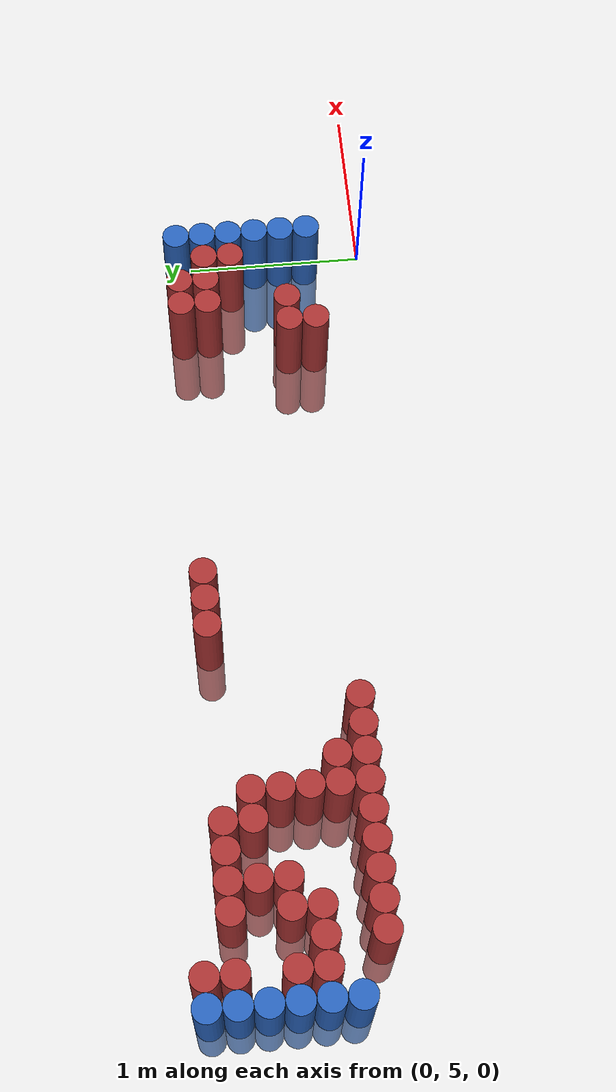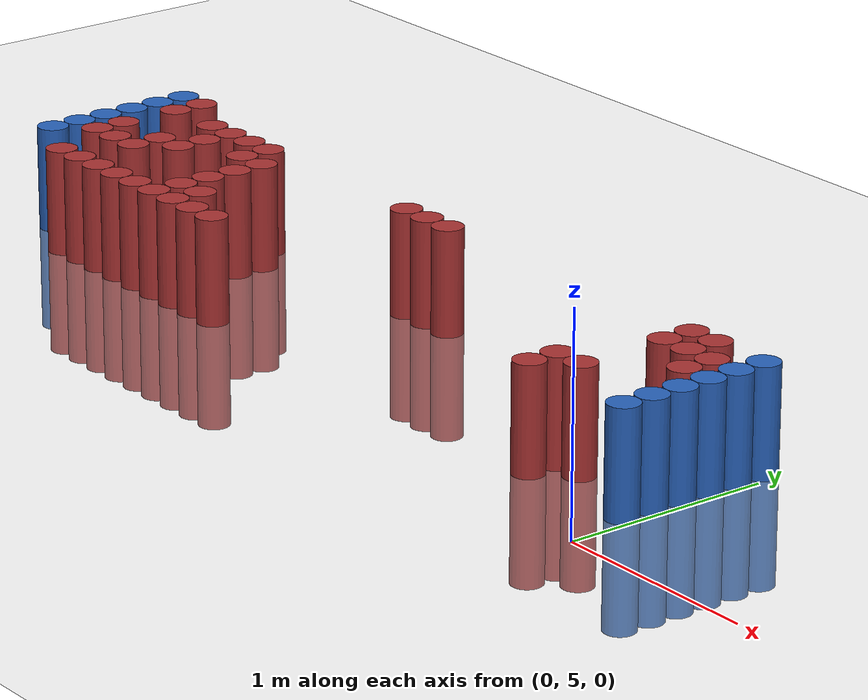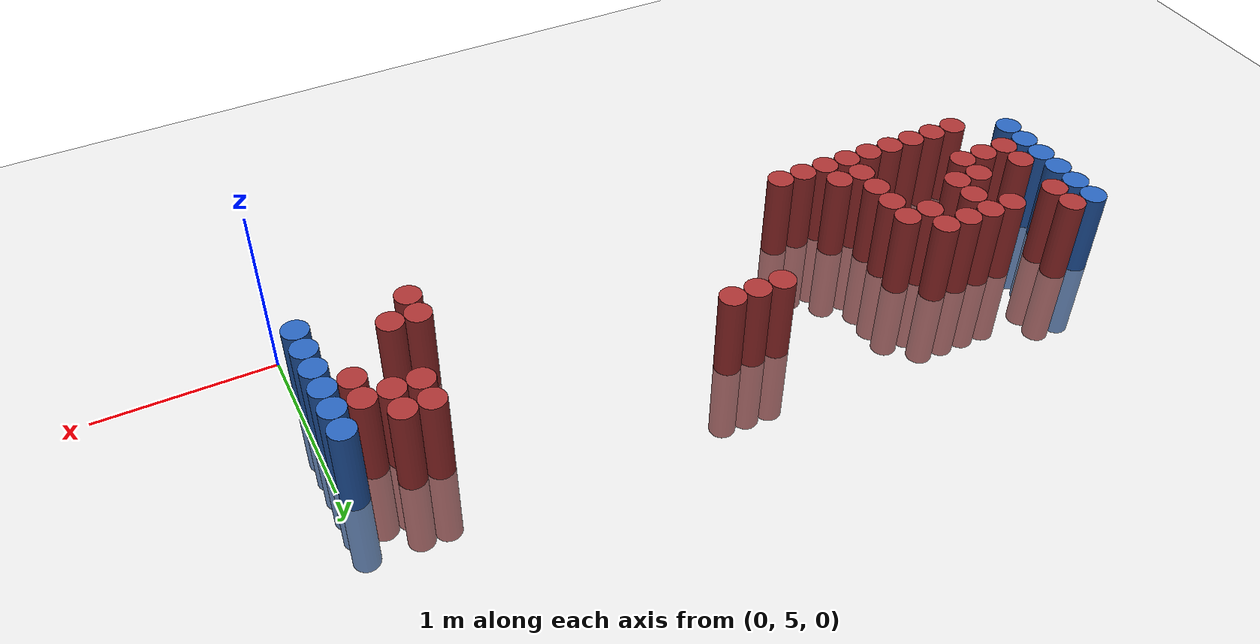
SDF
<sdf version="1.6">
 <world name="default">
  <model name="ground_plane">
   <static>1</static>
   <link name="link">
    <collision name="collision">
     <geometry><plane><normal>0 0 1</normal><size>100 100</size></plane></geometry>
     <surface><friction><ode><mu>100</mu><mu2>50</mu2></ode></friction></surface>
    </collision>
    <visual name="visual">
     <cast_shadows>0</cast_shadows>
     <geometry><plane><normal>0 0 1</normal><size>100 100</size></plane></geometry>
     <material>
      <script><uri>file://media/materials/scripts/gazebo.material</uri><name>Gazebo/Grey</name></script>
     </material>
    </visual>
   </link>
  </model>
  <model name="unit_cylinder_98">
   <static>1</static>
   <pose>-4.425000 5.475000 0.000000 0.000000 0.000000 0.000000</pose>
   <link name="link">
    <inertial>
     <mass>1</mass>
     <inertia><ixx>0.145833</ixx><ixy>0</ixy><ixz>0</ixz><iyy>0.145833</iyy><iyz>0</iyz><izz>0.125</izz></inertia>
    </inertial>
    <collision name="collision">
     <geometry><cylinder><radius>0.075000</radius><length>1</length></cylinder></geometry>
    </collision>
    <visual name="visual">
     <geometry><cylinder><radius>0.075000</radius><length>1</length></cylinder></geometry>
     <material>
      <ambient>0.152000 0.379000 0.720000 1</ambient>
      <diffuse>0.152000 0.379000 0.720000 1</diffuse>
     </material>
     <material>
      <script><name>Gazebo/Grey</name><uri>file://media/materials/scripts/gazebo.material</uri></script>
     </material>
    </visual>
   </link>
  </model>
  <model name="unit_cylinder_99">
   <static>1</static>
   <pose>-4.425000 5.625000 0.000000 0.000000 0.000000 0.000000</pose>
   <link name="link">
    <inertial>
     <mass>1</mass>
     <inertia><ixx>0.145833</ixx><ixy>0</ixy><ixz>0</ixz><iyy>0.145833</iyy><iyz>0</iyz><izz>0.125</izz></inertia>
    </inertial>
    <collision name="collision">
     <geometry><cylinder><radius>0.075000</radius><length>1</length></cylinder></geometry>
    </collision>
    <visual name="visual">
     <geometry><cylinder><radius>0.075000</radius><length>1</length></cylinder></geometry>
     <material>
      <ambient>0.152000 0.379000 0.720000 1</ambient>
      <diffuse>0.152000 0.379000 0.720000 1</diffuse>
     </material>
     <material>
      <script><name>Gazebo/Grey</name><uri>file://media/materials/scripts/gazebo.material</uri></script>
     </material>
    </visual>
   </link>
  </model>
  <model name="unit_cylinder_100">
   <static>1</static>
   <pose>-4.425000 5.775000 0.000000 0.000000 0.000000 0.000000</pose>
   <link name="link">
    <inertial>
     <mass>1</mass>
     <inertia><ixx>0.145833</ixx><ixy>0</ixy><ixz>0</ixz><iyy>0.145833</iyy><iyz>0</iyz><izz>0.125</izz></inertia>
    </inertial>
    <collision name="collision">
     <geometry><cylinder><radius>0.075000</radius><length>1</length></cylinder></geometry>
    </collision>
    <visual name="visual">
     <geometry><cylinder><radius>0.075000</radius><length>1</length></cylinder></geometry>
     <material>
      <ambient>0.152000 0.379000 0.720000 1</ambient>
      <diffuse>0.152000 0.379000 0.720000 1</diffuse>
     </material>
     <material>
      <script><name>Gazebo/Grey</name><uri>file://media/materials/scripts/gazebo.material</uri></script>
     </material>
    </visual>
   </link>
  </model>
  <model name="unit_cylinder_101">
   <static>1</static>
   <pose>-4.425000 5.925000 0.000000 0.000000 0.000000 0.000000</pose>
   <link name="link">
    <inertial>
     <mass>1</mass>
     <inertia><ixx>0.145833</ixx><ixy>0</ixy><ixz>0</ixz><iyy>0.145833</iyy><iyz>0</iyz><izz>0.125</izz></inertia>
    </inertial>
    <collision name="collision">
     <geometry><cylinder><radius>0.075000</radius><length>1</length></cylinder></geometry>
    </collision>
    <visual name="visual">
     <geometry><cylinder><radius>0.075000</radius><length>1</length></cylinder></geometry>
     <material>
      <ambient>0.152000 0.379000 0.720000 1</ambient>
      <diffuse>0.152000 0.379000 0.720000 1</diffuse>
     </material>
     <material>
      <script><name>Gazebo/Grey</name><uri>file://media/materials/scripts/gazebo.material</uri></script>
     </material>
    </visual>
   </link>
  </model>
  <model name="unit_cylinder_102">
   <static>1</static>
   <pose>-4.425000 6.075000 0.000000 0.000000 0.000000 0.000000</pose>
   <link name="link">
    <inertial>
     <mass>1</mass>
     <inertia><ixx>0.145833</ixx><ixy>0</ixy><ixz>0</ixz><iyy>0.145833</iyy><iyz>0</iyz><izz>0.125</izz></inertia>
    </inertial>
    <collision name="collision">
     <geometry><cylinder><radius>0.075000</radius><length>1</length></cylinder></geometry>
    </collision>
    <visual name="visual">
     <geometry><cylinder><radius>0.075000</radius><length>1</length></cylinder></geometry>
     <material>
      <ambient>0.152000 0.379000 0.720000 1</ambient>
      <diffuse>0.152000 0.379000 0.720000 1</diffuse>
     </material>
     <material>
      <script><name>Gazebo/Grey</name><uri>file://media/materials/scripts/gazebo.material</uri></script>
     </material>
    </visual>
   </link>
  </model>
  <model name="unit_cylinder_103">
   <static>1</static>
   <pose>-4.425000 6.225000 0.000000 0.000000 0.000000 0.000000</pose>
   <link name="link">
    <inertial>
     <mass>1</mass>
     <inertia><ixx>0.145833</ixx><ixy>0</ixy><ixz>0</ixz><iyy>0.145833</iyy><iyz>0</iyz><izz>0.125</izz></inertia>
    </inertial>
    <collision name="collision">
     <geometry><cylinder><radius>0.075000</radius><length>1</length></cylinder></geometry>
    </collision>
    <visual name="visual">
     <geometry><cylinder><radius>0.075000</radius><length>1</length></cylinder></geometry>
     <material>
      <ambient>0.152000 0.379000 0.720000 1</ambient>
      <diffuse>0.152000 0.379000 0.720000 1</diffuse>
     </material>
     <material>
      <script><name>Gazebo/Grey</name><uri>file://media/materials/scripts/gazebo.material</uri></script>
     </material>
    </visual>
   </link>
  </model>
  <model name="unit_cylinder_127">
   <static>1</static>
   <pose>-4.275000 5.625000 0.000000 0.000000 0.000000 0.000000</pose>
   <link name="link">
    <inertial>
     <mass>1</mass>
     <inertia><ixx>0.145833</ixx><ixy>0</ixy><ixz>0</ixz><iyy>0.145833</iyy><iyz>0</iyz><izz>0.125</izz></inertia>
    </inertial>
    <collision name="collision">
     <geometry><cylinder><radius>0.075000</radius><length>1</length></cylinder></geometry>
    </collision>
    <visual name="visual">
     <geometry><cylinder><radius>0.075000</radius><length>1</length></cylinder></geometry>
     <material>
      <ambient>0.648000 0.192000 0.192000 1</ambient>
      <diffuse>0.648000 0.192000 0.192000 1</diffuse>
     </material>
     <material>
      <script><name>Gazebo/Grey</name><uri>file://media/materials/scripts/gazebo.material</uri></script>
     </material>
    </visual>
   </link>
  </model>
  <model name="unit_cylinder_128">
   <static>1</static>
   <pose>-4.275000 5.775000 0.000000 0.000000 0.000000 0.000000</pose>
   <link name="link">
    <inertial>
     <mass>1</mass>
     <inertia><ixx>0.145833</ixx><ixy>0</ixy><ixz>0</ixz><iyy>0.145833</iyy><iyz>0</iyz><izz>0.125</izz></inertia>
    </inertial>
    <collision name="collision">
     <geometry><cylinder><radius>0.075000</radius><length>1</length></cylinder></geometry>
    </collision>
    <visual name="visual">
     <geometry><cylinder><radius>0.075000</radius><length>1</length></cylinder></geometry>
     <material>
      <ambient>0.648000 0.192000 0.192000 1</ambient>
      <diffuse>0.648000 0.192000 0.192000 1</diffuse>
     </material>
     <material>
      <script><name>Gazebo/Grey</name><uri>file://media/materials/scripts/gazebo.material</uri></script>
     </material>
    </visual>
   </link>
  </model>
  <model name="unit_cylinder_129">
   <static>1</static>
   <pose>-4.275000 6.075000 0.000000 0.000000 0.000000 0.000000</pose>
   <link name="link">
    <inertial>
     <mass>1</mass>
     <inertia><ixx>0.145833</ixx><ixy>0</ixy><ixz>0</ixz><iyy>0.145833</iyy><iyz>0</iyz><izz>0.125</izz></inertia>
    </inertial>
    <collision name="collision">
     <geometry><cylinder><radius>0.075000</radius><length>1</length></cylinder></geometry>
    </collision>
    <visual name="visual">
     <geometry><cylinder><radius>0.075000</radius><length>1</length></cylinder></geometry>
     <material>
      <ambient>0.648000 0.192000 0.192000 1</ambient>
      <diffuse>0.648000 0.192000 0.192000 1</diffuse>
     </material>
     <material>
      <script><name>Gazebo/Grey</name><uri>file://media/materials/scripts/gazebo.material</uri></script>
     </material>
    </visual>
   </link>
  </model>
  <model name="unit_cylinder_130">
   <static>1</static>
   <pose>-4.275000 6.225000 0.000000 0.000000 0.000000 0.000000</pose>
   <link name="link">
    <inertial>
     <mass>1</mass>
     <inertia><ixx>0.145833</ixx><ixy>0</ixy><ixz>0</ixz><iyy>0.145833</iyy><iyz>0</iyz><izz>0.125</izz></inertia>
    </inertial>
    <collision name="collision">
     <geometry><cylinder><radius>0.075000</radius><length>1</length></cylinder></geometry>
    </collision>
    <visual name="visual">
     <geometry><cylinder><radius>0.075000</radius><length>1</length></cylinder></geometry>
     <material>
      <ambient>0.648000 0.192000 0.192000 1</ambient>
      <diffuse>0.648000 0.192000 0.192000 1</diffuse>
     </material>
     <material>
      <script><name>Gazebo/Grey</name><uri>file://media/materials/scripts/gazebo.material</uri></script>
     </material>
    </visual>
   </link>
  </model>
  <model name="unit_cylinder_140">
   <static>1</static>
   <pose>-4.125000 5.325000 0.000000 0.000000 0.000000 0.000000</pose>
   <link name="link">
    <inertial>
     <mass>1</mass>
     <inertia><ixx>0.145833</ixx><ixy>0</ixy><ixz>0</ixz><iyy>0.145833</iyy><iyz>0</iyz><izz>0.125</izz></inertia>
    </inertial>
    <collision name="collision">
     <geometry><cylinder><radius>0.075000</radius><length>1</length></cylinder></geometry>
    </collision>
    <visual name="visual">
     <geometry><cylinder><radius>0.075000</radius><length>1</length></cylinder></geometry>
     <material>
      <ambient>0.648000 0.192000 0.192000 1</ambient>
      <diffuse>0.648000 0.192000 0.192000 1</diffuse>
     </material>
     <material>
      <script><name>Gazebo/Grey</name><uri>file://media/materials/scripts/gazebo.material</uri></script>
     </material>
    </visual>
   </link>
  </model>
  <model name="unit_cylinder_141">
   <static>1</static>
   <pose>-4.125000 5.625000 0.000000 0.000000 0.000000 0.000000</pose>
   <link name="link">
    <inertial>
     <mass>1</mass>
     <inertia><ixx>0.145833</ixx><ixy>0</ixy><ixz>0</ixz><iyy>0.145833</iyy><iyz>0</iyz><izz>0.125</izz></inertia>
    </inertial>
    <collision name="collision">
     <geometry><cylinder><radius>0.075000</radius><length>1</length></cylinder></geometry>
    </collision>
    <visual name="visual">
     <geometry><cylinder><radius>0.075000</radius><length>1</length></cylinder></geometry>
     <material>
      <ambient>0.648000 0.192000 0.192000 1</ambient>
      <diffuse>0.648000 0.192000 0.192000 1</diffuse>
     </material>
     <material>
      <script><name>Gazebo/Grey</name><uri>file://media/materials/scripts/gazebo.material</uri></script>
     </material>
    </visual>
   </link>
  </model>
  <model name="unit_cylinder_144">
   <static>1</static>
   <pose>-3.975000 5.325000 0.000000 0.000000 0.000000 0.000000</pose>
   <link name="link">
    <inertial>
     <mass>1</mass>
     <inertia><ixx>0.145833</ixx><ixy>0</ixy><ixz>0</ixz><iyy>0.145833</iyy><iyz>0</iyz><izz>0.125</izz></inertia>
    </inertial>
    <collision name="collision">
     <geometry><cylinder><radius>0.075000</radius><length>1</length></cylinder></geometry>
    </collision>
    <visual name="visual">
     <geometry><cylinder><radius>0.075000</radius><length>1</length></cylinder></geometry>
     <material>
      <ambient>0.648000 0.192000 0.192000 1</ambient>
      <diffuse>0.648000 0.192000 0.192000 1</diffuse>
     </material>
     <material>
      <script><name>Gazebo/Grey</name><uri>file://media/materials/scripts/gazebo.material</uri></script>
     </material>
    </visual>
   </link>
  </model>
  <model name="unit_cylinder_145">
   <static>1</static>
   <pose>-3.975000 5.625000 0.000000 0.000000 0.000000 0.000000</pose>
   <link name="link">
    <inertial>
     <mass>1</mass>
     <inertia><ixx>0.145833</ixx><ixy>0</ixy><ixz>0</ixz><iyy>0.145833</iyy><iyz>0</iyz><izz>0.125</izz></inertia>
    </inertial>
    <collision name="collision">
     <geometry><cylinder><radius>0.075000</radius><length>1</length></cylinder></geometry>
    </collision>
    <visual name="visual">
     <geometry><cylinder><radius>0.075000</radius><length>1</length></cylinder></geometry>
     <material>
      <ambient>0.648000 0.192000 0.192000 1</ambient>
      <diffuse>0.648000 0.192000 0.192000 1</diffuse>
     </material>
     <material>
      <script><name>Gazebo/Grey</name><uri>file://media/materials/scripts/gazebo.material</uri></script>
     </material>
    </visual>
   </link>
  </model>
  <model name="unit_cylinder_146">
   <static>1</static>
   <pose>-3.975000 5.775000 0.000000 0.000000 0.000000 0.000000</pose>
   <link name="link">
    <inertial>
     <mass>1</mass>
     <inertia><ixx>0.145833</ixx><ixy>0</ixy><ixz>0</ixz><iyy>0.145833</iyy><iyz>0</iyz><izz>0.125</izz></inertia>
    </inertial>
    <collision name="collision">
     <geometry><cylinder><radius>0.075000</radius><length>1</length></cylinder></geometry>
    </collision>
    <visual name="visual">
     <geometry><cylinder><radius>0.075000</radius><length>1</length></cylinder></geometry>
     <material>
      <ambient>0.648000 0.192000 0.192000 1</ambient>
      <diffuse>0.648000 0.192000 0.192000 1</diffuse>
     </material>
     <material>
      <script><name>Gazebo/Grey</name><uri>file://media/materials/scripts/gazebo.material</uri></script>
     </material>
    </visual>
   </link>
  </model>
  <model name="unit_cylinder_147">
   <static>1</static>
   <pose>-3.975000 6.075000 0.000000 0.000000 0.000000 0.000000</pose>
   <link name="link">
    <inertial>
     <mass>1</mass>
     <inertia><ixx>0.145833</ixx><ixy>0</ixy><ixz>0</ixz><iyy>0.145833</iyy><iyz>0</iyz><izz>0.125</izz></inertia>
    </inertial>
    <collision name="collision">
     <geometry><cylinder><radius>0.075000</radius><length>1</length></cylinder></geometry>
    </collision>
    <visual name="visual">
     <geometry><cylinder><radius>0.075000</radius><length>1</length></cylinder></geometry>
     <material>
      <ambient>0.648000 0.192000 0.192000 1</ambient>
      <diffuse>0.648000 0.192000 0.192000 1</diffuse>
     </material>
     <material>
      <script><name>Gazebo/Grey</name><uri>file://media/materials/scripts/gazebo.material</uri></script>
     </material>
    </visual>
   </link>
  </model>
  <model name="unit_cylinder_151">
   <static>1</static>
   <pose>-3.825000 5.325000 0.000000 0.000000 0.000000 0.000000</pose>
   <link name="link">
    <inertial>
     <mass>1</mass>
     <inertia><ixx>0.145833</ixx><ixy>0</ixy><ixz>0</ixz><iyy>0.145833</iyy><iyz>0</iyz><izz>0.125</izz></inertia>
    </inertial>
    <collision name="collision">
     <geometry><cylinder><radius>0.075000</radius><length>1</length></cylinder></geometry>
    </collision>
    <visual name="visual">
     <geometry><cylinder><radius>0.075000</radius><length>1</length></cylinder></geometry>
     <material>
      <ambient>0.648000 0.192000 0.192000 1</ambient>
      <diffuse>0.648000 0.192000 0.192000 1</diffuse>
     </material>
     <material>
      <script><name>Gazebo/Grey</name><uri>file://media/materials/scripts/gazebo.material</uri></script>
     </material>
    </visual>
   </link>
  </model>
  <model name="unit_cylinder_152">
   <static>1</static>
   <pose>-3.825000 5.775000 0.000000 0.000000 0.000000 0.000000</pose>
   <link name="link">
    <inertial>
     <mass>1</mass>
     <inertia><ixx>0.145833</ixx><ixy>0</ixy><ixz>0</ixz><iyy>0.145833</iyy><iyz>0</iyz><izz>0.125</izz></inertia>
    </inertial>
    <collision name="collision">
     <geometry><cylinder><radius>0.075000</radius><length>1</length></cylinder></geometry>
    </collision>
    <visual name="visual">
     <geometry><cylinder><radius>0.075000</radius><length>1</length></cylinder></geometry>
     <material>
      <ambient>0.648000 0.192000 0.192000 1</ambient>
      <diffuse>0.648000 0.192000 0.192000 1</diffuse>
     </material>
     <material>
      <script><name>Gazebo/Grey</name><uri>file://media/materials/scripts/gazebo.material</uri></script>
     </material>
    </visual>
   </link>
  </model>
  <model name="unit_cylinder_153">
   <static>1</static>
   <pose>-3.825000 5.925000 0.000000 0.000000 0.000000 0.000000</pose>
   <link name="link">
    <inertial>
     <mass>1</mass>
     <inertia><ixx>0.145833</ixx><ixy>0</ixy><ixz>0</ixz><iyy>0.145833</iyy><iyz>0</iyz><izz>0.125</izz></inertia>
    </inertial>
    <collision name="collision">
     <geometry><cylinder><radius>0.075000</radius><length>1</length></cylinder></geometry>
    </collision>
    <visual name="visual">
     <geometry><cylinder><radius>0.075000</radius><length>1</length></cylinder></geometry>
     <material>
      <ambient>0.648000 0.192000 0.192000 1</ambient>
      <diffuse>0.648000 0.192000 0.192000 1</diffuse>
     </material>
     <material>
      <script><name>Gazebo/Grey</name><uri>file://media/materials/scripts/gazebo.material</uri></script>
     </material>
    </visual>
   </link>
  </model>
  <model name="unit_cylinder_154">
   <static>1</static>
   <pose>-3.825000 6.075000 0.000000 0.000000 0.000000 0.000000</pose>
   <link name="link">
    <inertial>
     <mass>1</mass>
     <inertia><ixx>0.145833</ixx><ixy>0</ixy><ixz>0</ixz><iyy>0.145833</iyy><iyz>0</iyz><izz>0.125</izz></inertia>
    </inertial>
    <collision name="collision">
     <geometry><cylinder><radius>0.075000</radius><length>1</length></cylinder></geometry>
    </collision>
    <visual name="visual">
     <geometry><cylinder><radius>0.075000</radius><length>1</length></cylinder></geometry>
     <material>
      <ambient>0.648000 0.192000 0.192000 1</ambient>
      <diffuse>0.648000 0.192000 0.192000 1</diffuse>
     </material>
     <material>
      <script><name>Gazebo/Grey</name><uri>file://media/materials/scripts/gazebo.material</uri></script>
     </material>
    </visual>
   </link>
  </model>
  <model name="unit_cylinder_158">
   <static>1</static>
   <pose>-3.675000 5.325000 0.000000 0.000000 0.000000 0.000000</pose>
   <link name="link">
    <inertial>
     <mass>1</mass>
     <inertia><ixx>0.145833</ixx><ixy>0</ixy><ixz>0</ixz><iyy>0.145833</iyy><iyz>0</iyz><izz>0.125</izz></inertia>
    </inertial>
    <collision name="collision">
     <geometry><cylinder><radius>0.075000</radius><length>1</length></cylinder></geometry>
    </collision>
    <visual name="visual">
     <geometry><cylinder><radius>0.075000</radius><length>1</length></cylinder></geometry>
     <material>
      <ambient>0.648000 0.192000 0.192000 1</ambient>
      <diffuse>0.648000 0.192000 0.192000 1</diffuse>
     </material>
     <material>
      <script><name>Gazebo/Grey</name><uri>file://media/materials/scripts/gazebo.material</uri></script>
     </material>
    </visual>
   </link>
  </model>
  <model name="unit_cylinder_159">
   <static>1</static>
   <pose>-3.675000 6.075000 0.000000 0.000000 0.000000 0.000000</pose>
   <link name="link">
    <inertial>
     <mass>1</mass>
     <inertia><ixx>0.145833</ixx><ixy>0</ixy><ixz>0</ixz><iyy>0.145833</iyy><iyz>0</iyz><izz>0.125</izz></inertia>
    </inertial>
    <collision name="collision">
     <geometry><cylinder><radius>0.075000</radius><length>1</length></cylinder></geometry>
    </collision>
    <visual name="visual">
     <geometry><cylinder><radius>0.075000</radius><length>1</length></cylinder></geometry>
     <material>
      <ambient>0.648000 0.192000 0.192000 1</ambient>
      <diffuse>0.648000 0.192000 0.192000 1</diffuse>
     </material>
     <material>
      <script><name>Gazebo/Grey</name><uri>file://media/materials/scripts/gazebo.material</uri></script>
     </material>
    </visual>
   </link>
  </model>
  <model name="unit_cylinder_165">
   <static>1</static>
   <pose>-3.525000 5.325000 0.000000 0.000000 0.000000 0.000000</pose>
   <link name="link">
    <inertial>
     <mass>1</mass>
     <inertia><ixx>0.145833</ixx><ixy>0</ixy><ixz>0</ixz><iyy>0.145833</iyy><iyz>0</iyz><izz>0.125</izz></inertia>
    </inertial>
    <collision name="collision">
     <geometry><cylinder><radius>0.075000</radius><length>1</length></cylinder></geometry>
    </collision>
    <visual name="visual">
     <geometry><cylinder><radius>0.075000</radius><length>1</length></cylinder></geometry>
     <material>
      <ambient>0.648000 0.192000 0.192000 1</ambient>
      <diffuse>0.648000 0.192000 0.192000 1</diffuse>
     </material>
     <material>
      <script><name>Gazebo/Grey</name><uri>file://media/materials/scripts/gazebo.material</uri></script>
     </material>
    </visual>
   </link>
  </model>
  <model name="unit_cylinder_166">
   <static>1</static>
   <pose>-3.525000 5.925000 0.000000 0.000000 0.000000 0.000000</pose>
   <link name="link">
    <inertial>
     <mass>1</mass>
     <inertia><ixx>0.145833</ixx><ixy>0</ixy><ixz>0</ixz><iyy>0.145833</iyy><iyz>0</iyz><izz>0.125</izz></inertia>
    </inertial>
    <collision name="collision">
     <geometry><cylinder><radius>0.075000</radius><length>1</length></cylinder></geometry>
    </collision>
    <visual name="visual">
     <geometry><cylinder><radius>0.075000</radius><length>1</length></cylinder></geometry>
     <material>
      <ambient>0.648000 0.192000 0.192000 1</ambient>
      <diffuse>0.648000 0.192000 0.192000 1</diffuse>
     </material>
     <material>
      <script><name>Gazebo/Grey</name><uri>file://media/materials/scripts/gazebo.material</uri></script>
     </material>
    </visual>
   </link>
  </model>
  <model name="unit_cylinder_167">
   <static>1</static>
   <pose>-3.525000 6.075000 0.000000 0.000000 0.000000 0.000000</pose>
   <link name="link">
    <inertial>
     <mass>1</mass>
     <inertia><ixx>0.145833</ixx><ixy>0</ixy><ixz>0</ixz><iyy>0.145833</iyy><iyz>0</iyz><izz>0.125</izz></inertia>
    </inertial>
    <collision name="collision">
     <geometry><cylinder><radius>0.075000</radius><length>1</length></cylinder></geometry>
    </collision>
    <visual name="visual">
     <geometry><cylinder><radius>0.075000</radius><length>1</length></cylinder></geometry>
     <material>
      <ambient>0.648000 0.192000 0.192000 1</ambient>
      <diffuse>0.648000 0.192000 0.192000 1</diffuse>
     </material>
     <material>
      <script><name>Gazebo/Grey</name><uri>file://media/materials/scripts/gazebo.material</uri></script>
     </material>
    </visual>
   </link>
  </model>
  <model name="unit_cylinder_175">
   <static>1</static>
   <pose>-3.375000 5.325000 0.000000 0.000000 0.000000 0.000000</pose>
   <link name="link">
    <inertial>
     <mass>1</mass>
     <inertia><ixx>0.145833</ixx><ixy>0</ixy><ixz>0</ixz><iyy>0.145833</iyy><iyz>0</iyz><izz>0.125</izz></inertia>
    </inertial>
    <collision name="collision">
     <geometry><cylinder><radius>0.075000</radius><length>1</length></cylinder></geometry>
    </collision>
    <visual name="visual">
     <geometry><cylinder><radius>0.075000</radius><length>1</length></cylinder></geometry>
     <material>
      <ambient>0.648000 0.192000 0.192000 1</ambient>
      <diffuse>0.648000 0.192000 0.192000 1</diffuse>
     </material>
     <material>
      <script><name>Gazebo/Grey</name><uri>file://media/materials/scripts/gazebo.material</uri></script>
     </material>
    </visual>
   </link>
  </model>
  <model name="unit_cylinder_176">
   <static>1</static>
   <pose>-3.375000 5.475000 0.000000 0.000000 0.000000 0.000000</pose>
   <link name="link">
    <inertial>
     <mass>1</mass>
     <inertia><ixx>0.145833</ixx><ixy>0</ixy><ixz>0</ixz><iyy>0.145833</iyy><iyz>0</iyz><izz>0.125</izz></inertia>
    </inertial>
    <collision name="collision">
     <geometry><cylinder><radius>0.075000</radius><length>1</length></cylinder></geometry>
    </collision>
    <visual name="visual">
     <geometry><cylinder><radius>0.075000</radius><length>1</length></cylinder></geometry>
     <material>
      <ambient>0.648000 0.192000 0.192000 1</ambient>
      <diffuse>0.648000 0.192000 0.192000 1</diffuse>
     </material>
     <material>
      <script><name>Gazebo/Grey</name><uri>file://media/materials/scripts/gazebo.material</uri></script>
     </material>
    </visual>
   </link>
  </model>
  <model name="unit_cylinder_177">
   <static>1</static>
   <pose>-3.375000 5.625000 0.000000 0.000000 0.000000 0.000000</pose>
   <link name="link">
    <inertial>
     <mass>1</mass>
     <inertia><ixx>0.145833</ixx><ixy>0</ixy><ixz>0</ixz><iyy>0.145833</iyy><iyz>0</iyz><izz>0.125</izz></inertia>
    </inertial>
    <collision name="collision">
     <geometry><cylinder><radius>0.075000</radius><length>1</length></cylinder></geometry>
    </collision>
    <visual name="visual">
     <geometry><cylinder><radius>0.075000</radius><length>1</length></cylinder></geometry>
     <material>
      <ambient>0.648000 0.192000 0.192000 1</ambient>
      <diffuse>0.648000 0.192000 0.192000 1</diffuse>
     </material>
     <material>
      <script><name>Gazebo/Grey</name><uri>file://media/materials/scripts/gazebo.material</uri></script>
     </material>
    </visual>
   </link>
  </model>
  <model name="unit_cylinder_178">
   <static>1</static>
   <pose>-3.375000 5.775000 0.000000 0.000000 0.000000 0.000000</pose>
   <link name="link">
    <inertial>
     <mass>1</mass>
     <inertia><ixx>0.145833</ixx><ixy>0</ixy><ixz>0</ixz><iyy>0.145833</iyy><iyz>0</iyz><izz>0.125</izz></inertia>
    </inertial>
    <collision name="collision">
     <geometry><cylinder><radius>0.075000</radius><length>1</length></cylinder></geometry>
    </collision>
    <visual name="visual">
     <geometry><cylinder><radius>0.075000</radius><length>1</length></cylinder></geometry>
     <material>
      <ambient>0.648000 0.192000 0.192000 1</ambient>
      <diffuse>0.648000 0.192000 0.192000 1</diffuse>
     </material>
     <material>
      <script><name>Gazebo/Grey</name><uri>file://media/materials/scripts/gazebo.material</uri></script>
     </material>
    </visual>
   </link>
  </model>
  <model name="unit_cylinder_179">
   <static>1</static>
   <pose>-3.375000 5.925000 0.000000 0.000000 0.000000 0.000000</pose>
   <link name="link">
    <inertial>
     <mass>1</mass>
     <inertia><ixx>0.145833</ixx><ixy>0</ixy><ixz>0</ixz><iyy>0.145833</iyy><iyz>0</iyz><izz>0.125</izz></inertia>
    </inertial>
    <collision name="collision">
     <geometry><cylinder><radius>0.075000</radius><length>1</length></cylinder></geometry>
    </collision>
    <visual name="visual">
     <geometry><cylinder><radius>0.075000</radius><length>1</length></cylinder></geometry>
     <material>
      <ambient>0.648000 0.192000 0.192000 1</ambient>
      <diffuse>0.648000 0.192000 0.192000 1</diffuse>
     </material>
     <material>
      <script><name>Gazebo/Grey</name><uri>file://media/materials/scripts/gazebo.material</uri></script>
     </material>
    </visual>
   </link>
  </model>
  <model name="unit_cylinder_183">
   <static>1</static>
   <pose>-3.225000 5.325000 0.000000 0.000000 0.000000 0.000000</pose>
   <link name="link">
    <inertial>
     <mass>1</mass>
     <inertia><ixx>0.145833</ixx><ixy>0</ixy><ixz>0</ixz><iyy>0.145833</iyy><iyz>0</iyz><izz>0.125</izz></inertia>
    </inertial>
    <collision name="collision">
     <geometry><cylinder><radius>0.075000</radius><length>1</length></cylinder></geometry>
    </collision>
    <visual name="visual">
     <geometry><cylinder><radius>0.075000</radius><length>1</length></cylinder></geometry>
     <material>
      <ambient>0.648000 0.192000 0.192000 1</ambient>
      <diffuse>0.648000 0.192000 0.192000 1</diffuse>
     </material>
     <material>
      <script><name>Gazebo/Grey</name><uri>file://media/materials/scripts/gazebo.material</uri></script>
     </material>
    </visual>
   </link>
  </model>
  <model name="unit_cylinder_184">
   <static>1</static>
   <pose>-3.225000 5.475000 0.000000 0.000000 0.000000 0.000000</pose>
   <link name="link">
    <inertial>
     <mass>1</mass>
     <inertia><ixx>0.145833</ixx><ixy>0</ixy><ixz>0</ixz><iyy>0.145833</iyy><iyz>0</iyz><izz>0.125</izz></inertia>
    </inertial>
    <collision name="collision">
     <geometry><cylinder><radius>0.075000</radius><length>1</length></cylinder></geometry>
    </collision>
    <visual name="visual">
     <geometry><cylinder><radius>0.075000</radius><length>1</length></cylinder></geometry>
     <material>
      <ambient>0.648000 0.192000 0.192000 1</ambient>
      <diffuse>0.648000 0.192000 0.192000 1</diffuse>
     </material>
     <material>
      <script><name>Gazebo/Grey</name><uri>file://media/materials/scripts/gazebo.material</uri></script>
     </material>
    </visual>
   </link>
  </model>
  <model name="unit_cylinder_190">
   <static>1</static>
   <pose>-3.075000 5.325000 0.000000 0.000000 0.000000 0.000000</pose>
   <link name="link">
    <inertial>
     <mass>1</mass>
     <inertia><ixx>0.145833</ixx><ixy>0</ixy><ixz>0</ixz><iyy>0.145833</iyy><iyz>0</iyz><izz>0.125</izz></inertia>
    </inertial>
    <collision name="collision">
     <geometry><cylinder><radius>0.075000</radius><length>1</length></cylinder></geometry>
    </collision>
    <visual name="visual">
     <geometry><cylinder><radius>0.075000</radius><length>1</length></cylinder></geometry>
     <material>
      <ambient>0.648000 0.192000 0.192000 1</ambient>
      <diffuse>0.648000 0.192000 0.192000 1</diffuse>
     </material>
     <material>
      <script><name>Gazebo/Grey</name><uri>file://media/materials/scripts/gazebo.material</uri></script>
     </material>
    </visual>
   </link>
  </model>
  <model name="unit_cylinder_196">
   <static>1</static>
   <pose>-2.925000 5.325000 0.000000 0.000000 0.000000 0.000000</pose>
   <link name="link">
    <inertial>
     <mass>1</mass>
     <inertia><ixx>0.145833</ixx><ixy>0</ixy><ixz>0</ixz><iyy>0.145833</iyy><iyz>0</iyz><izz>0.125</izz></inertia>
    </inertial>
    <collision name="collision">
     <geometry><cylinder><radius>0.075000</radius><length>1</length></cylinder></geometry>
    </collision>
    <visual name="visual">
     <geometry><cylinder><radius>0.075000</radius><length>1</length></cylinder></geometry>
     <material>
      <ambient>0.648000 0.192000 0.192000 1</ambient>
      <diffuse>0.648000 0.192000 0.192000 1</diffuse>
     </material>
     <material>
      <script><name>Gazebo/Grey</name><uri>file://media/materials/scripts/gazebo.material</uri></script>
     </material>
    </visual>
   </link>
  </model>
  <model name="unit_cylinder_205">
   <static>1</static>
   <pose>-2.475000 6.075000 0.000000 0.000000 0.000000 0.000000</pose>
   <link name="link">
    <inertial>
     <mass>1</mass>
     <inertia><ixx>0.145833</ixx><ixy>0</ixy><ixz>0</ixz><iyy>0.145833</iyy><iyz>0</iyz><izz>0.125</izz></inertia>
    </inertial>
    <collision name="collision">
     <geometry><cylinder><radius>0.075000</radius><length>1</length></cylinder></geometry>
    </collision>
    <visual name="visual">
     <geometry><cylinder><radius>0.075000</radius><length>1</length></cylinder></geometry>
     <material>
      <ambient>0.648000 0.192000 0.192000 1</ambient>
      <diffuse>0.648000 0.192000 0.192000 1</diffuse>
     </material>
     <material>
      <script><name>Gazebo/Grey</name><uri>file://media/materials/scripts/gazebo.material</uri></script>
     </material>
    </visual>
   </link>
  </model>
  <model name="unit_cylinder_207">
   <static>1</static>
   <pose>-2.325000 6.075000 0.000000 0.000000 0.000000 0.000000</pose>
   <link name="link">
    <inertial>
     <mass>1</mass>
     <inertia><ixx>0.145833</ixx><ixy>0</ixy><ixz>0</ixz><iyy>0.145833</iyy><iyz>0</iyz><izz>0.125</izz></inertia>
    </inertial>
    <collision name="collision">
     <geometry><cylinder><radius>0.075000</radius><length>1</length></cylinder></geometry>
    </collision>
    <visual name="visual">
     <geometry><cylinder><radius>0.075000</radius><length>1</length></cylinder></geometry>
     <material>
      <ambient>0.648000 0.192000 0.192000 1</ambient>
      <diffuse>0.648000 0.192000 0.192000 1</diffuse>
     </material>
     <material>
      <script><name>Gazebo/Grey</name><uri>file://media/materials/scripts/gazebo.material</uri></script>
     </material>
    </visual>
   </link>
  </model>
  <model name="unit_cylinder_211">
   <static>1</static>
   <pose>-2.175000 6.075000 0.000000 0.000000 0.000000 0.000000</pose>
   <link name="link">
    <inertial>
     <mass>1</mass>
     <inertia><ixx>0.145833</ixx><ixy>0</ixy><ixz>0</ixz><iyy>0.145833</iyy><iyz>0</iyz><izz>0.125</izz></inertia>
    </inertial>
    <collision name="collision">
     <geometry><cylinder><radius>0.075000</radius><length>1</length></cylinder></geometry>
    </collision>
    <visual name="visual">
     <geometry><cylinder><radius>0.075000</radius><length>1</length></cylinder></geometry>
     <material>
      <ambient>0.648000 0.192000 0.192000 1</ambient>
      <diffuse>0.648000 0.192000 0.192000 1</diffuse>
     </material>
     <material>
      <script><name>Gazebo/Grey</name><uri>file://media/materials/scripts/gazebo.material</uri></script>
     </material>
    </visual>
   </link>
  </model>
  <model name="unit_cylinder_241">
   <static>1</static>
   <pose>-0.675000 5.325000 0.000000 0.000000 0.000000 0.000000</pose>
   <link name="link">
    <inertial>
     <mass>1</mass>
     <inertia><ixx>0.145833</ixx><ixy>0</ixy><ixz>0</ixz><iyy>0.145833</iyy><iyz>0</iyz><izz>0.125</izz></inertia>
    </inertial>
    <collision name="collision">
     <geometry><cylinder><radius>0.075000</radius><length>1</length></cylinder></geometry>
    </collision>
    <visual name="visual">
     <geometry><cylinder><radius>0.075000</radius><length>1</length></cylinder></geometry>
     <material>
      <ambient>0.648000 0.192000 0.192000 1</ambient>
      <diffuse>0.648000 0.192000 0.192000 1</diffuse>
     </material>
     <material>
      <script><name>Gazebo/Grey</name><uri>file://media/materials/scripts/gazebo.material</uri></script>
     </material>
    </visual>
   </link>
  </model>
  <model name="unit_cylinder_242">
   <static>1</static>
   <pose>-0.675000 5.475000 0.000000 0.000000 0.000000 0.000000</pose>
   <link name="link">
    <inertial>
     <mass>1</mass>
     <inertia><ixx>0.145833</ixx><ixy>0</ixy><ixz>0</ixz><iyy>0.145833</iyy><iyz>0</iyz><izz>0.125</izz></inertia>
    </inertial>
    <collision name="collision">
     <geometry><cylinder><radius>0.075000</radius><length>1</length></cylinder></geometry>
    </collision>
    <visual name="visual">
     <geometry><cylinder><radius>0.075000</radius><length>1</length></cylinder></geometry>
     <material>
      <ambient>0.648000 0.192000 0.192000 1</ambient>
      <diffuse>0.648000 0.192000 0.192000 1</diffuse>
     </material>
     <material>
      <script><name>Gazebo/Grey</name><uri>file://media/materials/scripts/gazebo.material</uri></script>
     </material>
    </visual>
   </link>
  </model>
  <model name="unit_cylinder_247">
   <static>1</static>
   <pose>-0.525000 5.475000 0.000000 0.000000 0.000000 0.000000</pose>
   <link name="link">
    <inertial>
     <mass>1</mass>
     <inertia><ixx>0.145833</ixx><ixy>0</ixy><ixz>0</ixz><iyy>0.145833</iyy><iyz>0</iyz><izz>0.125</izz></inertia>
    </inertial>
    <collision name="collision">
     <geometry><cylinder><radius>0.075000</radius><length>1</length></cylinder></geometry>
    </collision>
    <visual name="visual">
     <geometry><cylinder><radius>0.075000</radius><length>1</length></cylinder></geometry>
     <material>
      <ambient>0.648000 0.192000 0.192000 1</ambient>
      <diffuse>0.648000 0.192000 0.192000 1</diffuse>
     </material>
     <material>
      <script><name>Gazebo/Grey</name><uri>file://media/materials/scripts/gazebo.material</uri></script>
     </material>
    </visual>
   </link>
  </model>
  <model name="unit_cylinder_248">
   <static>1</static>
   <pose>-0.525000 5.925000 0.000000 0.000000 0.000000 0.000000</pose>
   <link name="link">
    <inertial>
     <mass>1</mass>
     <inertia><ixx>0.145833</ixx><ixy>0</ixy><ixz>0</ixz><iyy>0.145833</iyy><iyz>0</iyz><izz>0.125</izz></inertia>
    </inertial>
    <collision name="collision">
     <geometry><cylinder><radius>0.075000</radius><length>1</length></cylinder></geometry>
    </collision>
    <visual name="visual">
     <geometry><cylinder><radius>0.075000</radius><length>1</length></cylinder></geometry>
     <material>
      <ambient>0.648000 0.192000 0.192000 1</ambient>
      <diffuse>0.648000 0.192000 0.192000 1</diffuse>
     </material>
     <material>
      <script><name>Gazebo/Grey</name><uri>file://media/materials/scripts/gazebo.material</uri></script>
     </material>
    </visual>
   </link>
  </model>
  <model name="unit_cylinder_249">
   <static>1</static>
   <pose>-0.525000 6.075000 0.000000 0.000000 0.000000 0.000000</pose>
   <link name="link">
    <inertial>
     <mass>1</mass>
     <inertia><ixx>0.145833</ixx><ixy>0</ixy><ixz>0</ixz><iyy>0.145833</iyy><iyz>0</iyz><izz>0.125</izz></inertia>
    </inertial>
    <collision name="collision">
     <geometry><cylinder><radius>0.075000</radius><length>1</length></cylinder></geometry>
    </collision>
    <visual name="visual">
     <geometry><cylinder><radius>0.075000</radius><length>1</length></cylinder></geometry>
     <material>
      <ambient>0.648000 0.192000 0.192000 1</ambient>
      <diffuse>0.648000 0.192000 0.192000 1</diffuse>
     </material>
     <material>
      <script><name>Gazebo/Grey</name><uri>file://media/materials/scripts/gazebo.material</uri></script>
     </material>
    </visual>
   </link>
  </model>
  <model name="unit_cylinder_259">
   <static>1</static>
   <pose>-0.375000 5.925000 0.000000 0.000000 0.000000 0.000000</pose>
   <link name="link">
    <inertial>
     <mass>1</mass>
     <inertia><ixx>0.145833</ixx><ixy>0</ixy><ixz>0</ixz><iyy>0.145833</iyy><iyz>0</iyz><izz>0.125</izz></inertia>
    </inertial>
    <collision name="collision">
     <geometry><cylinder><radius>0.075000</radius><length>1</length></cylinder></geometry>
    </collision>
    <visual name="visual">
     <geometry><cylinder><radius>0.075000</radius><length>1</length></cylinder></geometry>
     <material>
      <ambient>0.648000 0.192000 0.192000 1</ambient>
      <diffuse>0.648000 0.192000 0.192000 1</diffuse>
     </material>
     <material>
      <script><name>Gazebo/Grey</name><uri>file://media/materials/scripts/gazebo.material</uri></script>
     </material>
    </visual>
   </link>
  </model>
  <model name="unit_cylinder_260">
   <static>1</static>
   <pose>-0.375000 6.075000 0.000000 0.000000 0.000000 0.000000</pose>
   <link name="link">
    <inertial>
     <mass>1</mass>
     <inertia><ixx>0.145833</ixx><ixy>0</ixy><ixz>0</ixz><iyy>0.145833</iyy><iyz>0</iyz><izz>0.125</izz></inertia>
    </inertial>
    <collision name="collision">
     <geometry><cylinder><radius>0.075000</radius><length>1</length></cylinder></geometry>
    </collision>
    <visual name="visual">
     <geometry><cylinder><radius>0.075000</radius><length>1</length></cylinder></geometry>
     <material>
      <ambient>0.648000 0.192000 0.192000 1</ambient>
      <diffuse>0.648000 0.192000 0.192000 1</diffuse>
     </material>
     <material>
      <script><name>Gazebo/Grey</name><uri>file://media/materials/scripts/gazebo.material</uri></script>
     </material>
    </visual>
   </link>
  </model>
  <model name="unit_cylinder_272">
   <static>1</static>
   <pose>-0.225000 5.775000 0.000000 0.000000 0.000000 0.000000</pose>
   <link name="link">
    <inertial>
     <mass>1</mass>
     <inertia><ixx>0.145833</ixx><ixy>0</ixy><ixz>0</ixz><iyy>0.145833</iyy><iyz>0</iyz><izz>0.125</izz></inertia>
    </inertial>
    <collision name="collision">
     <geometry><cylinder><radius>0.075000</radius><length>1</length></cylinder></geometry>
    </collision>
    <visual name="visual">
     <geometry><cylinder><radius>0.075000</radius><length>1</length></cylinder></geometry>
     <material>
      <ambient>0.648000 0.192000 0.192000 1</ambient>
      <diffuse>0.648000 0.192000 0.192000 1</diffuse>
     </material>
     <material>
      <script><name>Gazebo/Grey</name><uri>file://media/materials/scripts/gazebo.material</uri></script>
     </material>
    </visual>
   </link>
  </model>
  <model name="unit_cylinder_273">
   <static>1</static>
   <pose>-0.225000 5.925000 0.000000 0.000000 0.000000 0.000000</pose>
   <link name="link">
    <inertial>
     <mass>1</mass>
     <inertia><ixx>0.145833</ixx><ixy>0</ixy><ixz>0</ixz><iyy>0.145833</iyy><iyz>0</iyz><izz>0.125</izz></inertia>
    </inertial>
    <collision name="collision">
     <geometry><cylinder><radius>0.075000</radius><length>1</length></cylinder></geometry>
    </collision>
    <visual name="visual">
     <geometry><cylinder><radius>0.075000</radius><length>1</length></cylinder></geometry>
     <material>
      <ambient>0.648000 0.192000 0.192000 1</ambient>
      <diffuse>0.648000 0.192000 0.192000 1</diffuse>
     </material>
     <material>
      <script><name>Gazebo/Grey</name><uri>file://media/materials/scripts/gazebo.material</uri></script>
     </material>
    </visual>
   </link>
  </model>
  <model name="unit_cylinder_281">
   <static>1</static>
   <pose>-0.075000 5.325000 0.000000 0.000000 0.000000 0.000000</pose>
   <link name="link">
    <inertial>
     <mass>1</mass>
     <inertia><ixx>0.145833</ixx><ixy>0</ixy><ixz>0</ixz><iyy>0.145833</iyy><iyz>0</iyz><izz>0.125</izz></inertia>
    </inertial>
    <collision name="collision">
     <geometry><cylinder><radius>0.075000</radius><length>1</length></cylinder></geometry>
    </collision>
    <visual name="visual">
     <geometry><cylinder><radius>0.075000</radius><length>1</length></cylinder></geometry>
     <material>
      <ambient>0.152000 0.379000 0.720000 1</ambient>
      <diffuse>0.152000 0.379000 0.720000 1</diffuse>
     </material>
     <material>
      <script><name>Gazebo/Grey</name><uri>file://media/materials/scripts/gazebo.material</uri></script>
     </material>
    </visual>
   </link>
  </model>
  <model name="unit_cylinder_282">
   <static>1</static>
   <pose>-0.075000 5.475000 0.000000 0.000000 0.000000 0.000000</pose>
   <link name="link">
    <inertial>
     <mass>1</mass>
     <inertia><ixx>0.145833</ixx><ixy>0</ixy><ixz>0</ixz><iyy>0.145833</iyy><iyz>0</iyz><izz>0.125</izz></inertia>
    </inertial>
    <collision name="collision">
     <geometry><cylinder><radius>0.075000</radius><length>1</length></cylinder></geometry>
    </collision>
    <visual name="visual">
     <geometry><cylinder><radius>0.075000</radius><length>1</length></cylinder></geometry>
     <material>
      <ambient>0.152000 0.379000 0.720000 1</ambient>
      <diffuse>0.152000 0.379000 0.720000 1</diffuse>
     </material>
     <material>
      <script><name>Gazebo/Grey</name><uri>file://media/materials/scripts/gazebo.material</uri></script>
     </material>
    </visual>
   </link>
  </model>
  <model name="unit_cylinder_283">
   <static>1</static>
   <pose>-0.075000 5.625000 0.000000 0.000000 0.000000 0.000000</pose>
   <link name="link">
    <inertial>
     <mass>1</mass>
     <inertia><ixx>0.145833</ixx><ixy>0</ixy><ixz>0</ixz><iyy>0.145833</iyy><iyz>0</iyz><izz>0.125</izz></inertia>
    </inertial>
    <collision name="collision">
     <geometry><cylinder><radius>0.075000</radius><length>1</length></cylinder></geometry>
    </collision>
    <visual name="visual">
     <geometry><cylinder><radius>0.075000</radius><length>1</length></cylinder></geometry>
     <material>
      <ambient>0.152000 0.379000 0.720000 1</ambient>
      <diffuse>0.152000 0.379000 0.720000 1</diffuse>
     </material>
     <material>
      <script><name>Gazebo/Grey</name><uri>file://media/materials/scripts/gazebo.material</uri></script>
     </material>
    </visual>
   </link>
  </model>
  <model name="unit_cylinder_284">
   <static>1</static>
   <pose>-0.075000 5.775000 0.000000 0.000000 0.000000 0.000000</pose>
   <link name="link">
    <inertial>
     <mass>1</mass>
     <inertia><ixx>0.145833</ixx><ixy>0</ixy><ixz>0</ixz><iyy>0.145833</iyy><iyz>0</iyz><izz>0.125</izz></inertia>
    </inertial>
    <collision name="collision">
     <geometry><cylinder><radius>0.075000</radius><length>1</length></cylinder></geometry>
    </collision>
    <visual name="visual">
     <geometry><cylinder><radius>0.075000</radius><length>1</length></cylinder></geometry>
     <material>
      <ambient>0.152000 0.379000 0.720000 1</ambient>
      <diffuse>0.152000 0.379000 0.720000 1</diffuse>
     </material>
     <material>
      <script><name>Gazebo/Grey</name><uri>file://media/materials/scripts/gazebo.material</uri></script>
     </material>
    </visual>
   </link>
  </model>
  <model name="unit_cylinder_285">
   <static>1</static>
   <pose>-0.075000 5.925000 0.000000 0.000000 0.000000 0.000000</pose>
   <link name="link">
    <inertial>
     <mass>1</mass>
     <inertia><ixx>0.145833</ixx><ixy>0</ixy><ixz>0</ixz><iyy>0.145833</iyy><iyz>0</iyz><izz>0.125</izz></inertia>
    </inertial>
    <collision name="collision">
     <geometry><cylinder><radius>0.075000</radius><length>1</length></cylinder></geometry>
    </collision>
    <visual name="visual">
     <geometry><cylinder><radius>0.075000</radius><length>1</length></cylinder></geometry>
     <material>
      <ambient>0.152000 0.379000 0.720000 1</ambient>
      <diffuse>0.152000 0.379000 0.720000 1</diffuse>
     </material>
     <material>
      <script><name>Gazebo/Grey</name><uri>file://media/materials/scripts/gazebo.material</uri></script>
     </material>
    </visual>
   </link>
  </model>
  <model name="unit_cylinder_286">
   <static>1</static>
   <pose>-0.075000 6.075000 0.000000 0.000000 0.000000 0.000000</pose>
   <link name="link">
    <inertial>
     <mass>1</mass>
     <inertia><ixx>0.145833</ixx><ixy>0</ixy><ixz>0</ixz><iyy>0.145833</iyy><iyz>0</iyz><izz>0.125</izz></inertia>
    </inertial>
    <collision name="collision">
     <geometry><cylinder><radius>0.075000</radius><length>1</length></cylinder></geometry>
    </collision>
    <visual name="visual">
     <geometry><cylinder><radius>0.075000</radius><length>1</length></cylinder></geometry>
     <material>
      <ambient>0.152000 0.379000 0.720000 1</ambient>
      <diffuse>0.152000 0.379000 0.720000 1</diffuse>
     </material>
     <material>
      <script><name>Gazebo/Grey</name><uri>file://media/materials/scripts/gazebo.material</uri></script>
     </material>
    </visual>
   </link>
  </model>
 </world>
</sdf>
